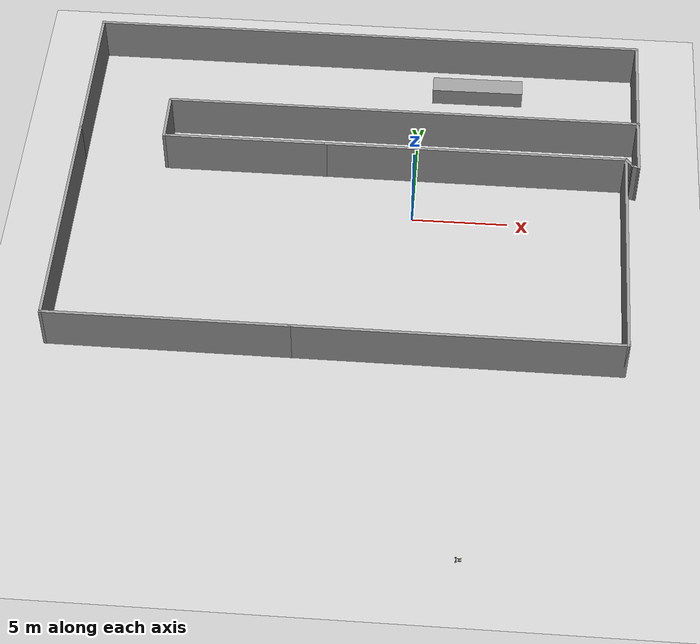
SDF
<sdf version="1.7">
 <world name="default">
  <light name="sun" type="directional">
   <pose>0 0 10 0 -0 0</pose>
   <diffuse>0.8 0.8 0.8 1</diffuse>
   <specular>0.2 0.2 0.2 1</specular>
   <attenuation>
    <range>1000</range>
    <constant>0.9</constant>
    <linear>0.01</linear>
    <quadratic>0.001</quadratic>
   </attenuation>
   <direction>-0.5 0.1 -0.9</direction>
   <spot><inner_angle>0</inner_angle><outer_angle>0</outer_angle><falloff>0</falloff></spot>
  </light>
  <model name="ground_plane">
   <static>1</static>
   <link name="link">
    <collision name="collision">
     <geometry><plane><normal>0 0 1</normal><size>100 100</size></plane></geometry>
     <surface>
      <contact><collide_bitmask>65535</collide_bitmask></contact>
      <friction><ode><mu>100</mu><mu2>50</mu2></ode></friction>
     </surface>
    </collision>
    <visual name="visual">
     <cast_shadows>0</cast_shadows>
     <geometry><plane><normal>0 0 1</normal><size>100 100</size></plane></geometry>
     <material>
      <script><uri>file://media/materials/scripts/gazebo.material</uri><name>Gazebo/Grey</name></script>
     </material>
    </visual>
   </link>
  </model>
  <gravity>0 0 -9.8</gravity>
  <magnetic_field>6e-06 2.3e-05 -4.2e-05</magnetic_field>
  <atmosphere type="adiabatic"/>
  <physics type="ode">
   <max_step_size>0.001</max_step_size>
   <real_time_factor>1</real_time_factor>
   <real_time_update_rate>1000</real_time_update_rate>
  </physics>
  <scene><ambient>0.4 0.4 0.4 1</ambient><background>0.7 0.7 0.7 1</background><shadows>1</shadows></scene>
  <spherical_coordinates>
   <surface_model>EARTH_WGS84</surface_model>
   <latitude_deg>0</latitude_deg>
   <longitude_deg>0</longitude_deg>
   <elevation>0</elevation>
   <heading_deg>0</heading_deg>
  </spherical_coordinates>
  <model name="self_balancing_robot">
   <link name="link_chassis">
    <inertial>
     <pose>0 0 0.089 0 -0 0</pose>
     <mass>2.50001</mass>
     <inertia>
      <ixx>0.0305466</ixx>
      <ixy>0</ixy>
      <ixz>3.85977e-20</ixz>
      <iyy>0.0283746</iyy>
      <iyz>2.73468e-15</iyz>
      <izz>0.0108558</izz>
     </inertia>
    </inertial>
    <collision name="link_chassis_fixed_joint_lump__collision_chassis_collision">
     <geometry><box><size>0.085 0.18 0.004</size></box></geometry>
    </collision>
    <collision name="link_chassis_2_collision_1">
     <pose>0 0 0.225 0 -0 0</pose>
     <geometry><box><size>0.085 0.18 0.004</size></box></geometry>
    </collision>
    <collision name="link_chassis_3_collision_2">
     <pose>0 0 0.115 0 -0 0</pose>
     <geometry><box><size>0.085 0.18 0.004</size></box></geometry>
    </collision>
    <collision name="link_chassis_fixed_joint_lump__cubuk_1_collision_3">
     <pose>0.02 0.06 0.125 0 -0 0</pose>
     <geometry><cylinder><length>0.25</length><radius>0.008</radius></cylinder></geometry>
    </collision>
    <collision name="link_chassis_fixed_joint_lump__cubuk_2_collision_4">
     <pose>-0.02 0.06 0.125 0 -0 0</pose>
     <geometry><cylinder><length>0.25</length><radius>0.008</radius></cylinder></geometry>
    </collision>
    <collision name="link_chassis_fixed_joint_lump__cubuk_3_collision_5">
     <pose>0.02 -0.06 0.125 0 -0 0</pose>
     <geometry><cylinder><length>0.25</length><radius>0.008</radius></cylinder></geometry>
    </collision>
    <collision name="link_chassis_fixed_joint_lump__cubuk_4_collision_6">
     <pose>-0.02 -0.06 0.125 0 -0 0</pose>
     <geometry><cylinder><length>0.25</length><radius>0.008</radius></cylinder></geometry>
    </collision>
    <collision name="link_chassis_fixed_joint_lump__tekerlek_motor_sag_collision_7">
     <pose>0 0.09 -0.02 0 -0 0</pose>
     <geometry><box><size>0.08 0.04 0.05</size></box></geometry>
    </collision>
    <collision name="link_chassis_fixed_joint_lump__teker_cubuk_sag_collision_8">
     <pose>0 0.12 -0.02 1.5708 -0 0</pose>
     <geometry><cylinder><length>0.02</length><radius>0.005</radius></cylinder></geometry>
    </collision>
    <collision name="link_chassis_fixed_joint_lump__tekerlek_motor_sol_collision_9">
     <pose>0 -0.09 -0.02 0 -0 0</pose>
     <geometry><box><size>0.08 0.04 0.05</size></box></geometry>
    </collision>
    <collision name="link_chassis_fixed_joint_lump__teker_cubuk_sol_collision_10">
     <pose>0 -0.12 -0.02 1.5708 -0 0</pose>
     <geometry><cylinder><length>0.02</length><radius>0.005</radius></cylinder></geometry>
    </collision>
    <collision name="link_chassis_fixed_joint_lump__sensor_laser_collision_11">
     <pose>0 0 0.125 0 -0 0</pose>
     <geometry><cylinder><length>0.02</length><radius>0.025</radius></cylinder></geometry>
    </collision>
    <visual name="link_chassis_visual">
     <geometry><box><size>0.085 0.18 0.004</size></box></geometry>
     <material>
      <script><name>Gazebo/Yellow</name><uri>file://media/materials/scripts/gazebo.material</uri></script>
     </material>
    </visual>
    <visual name="link_chassis_2_visual_1">
     <pose>0 0 0.225 0 -0 0</pose>
     <geometry><box><size>0.085 0.18 0.004</size></box></geometry>
     <material>
      <script><name>Gazebo/Yellow</name><uri>file://media/materials/scripts/gazebo.material</uri></script>
     </material>
    </visual>
    <visual name="link_chassis_3_visual_2">
     <pose>0 0 0.115 0 -0 0</pose>
     <geometry><box><size>0.085 0.18 0.004</size></box></geometry>
     <material>
      <script><name>Gazebo/Yellow</name><uri>file://media/materials/scripts/gazebo.material</uri></script>
     </material>
    </visual>
    <visual name="link_chassis_fixed_joint_lump__cubuk_1_visual_3">
     <pose>0.02 0.06 0.125 0 -0 0</pose>
     <geometry><cylinder><length>0.25</length><radius>0.008</radius></cylinder></geometry>
     <material>
      <script><name>Gazebo/Gray</name><uri>file://media/materials/scripts/gazebo.material</uri></script>
     </material>
    </visual>
    <visual name="link_chassis_fixed_joint_lump__cubuk_2_visual_4">
     <pose>-0.02 0.06 0.125 0 -0 0</pose>
     <geometry><cylinder><length>0.25</length><radius>0.008</radius></cylinder></geometry>
     <material>
      <script><name>Gazebo/Gray</name><uri>file://media/materials/scripts/gazebo.material</uri></script>
     </material>
    </visual>
    <visual name="link_chassis_fixed_joint_lump__cubuk_3_visual_5">
     <pose>0.02 -0.06 0.125 0 -0 0</pose>
     <geometry><cylinder><length>0.25</length><radius>0.008</radius></cylinder></geometry>
     <material>
      <script><name>Gazebo/Gray</name><uri>file://media/materials/scripts/gazebo.material</uri></script>
     </material>
    </visual>
    <visual name="link_chassis_fixed_joint_lump__cubuk_4_visual_6">
     <pose>-0.02 -0.06 0.125 0 -0 0</pose>
     <geometry><cylinder><length>0.25</length><radius>0.008</radius></cylinder></geometry>
     <material>
      <script><name>Gazebo/Gray</name><uri>file://media/materials/scripts/gazebo.material</uri></script>
     </material>
    </visual>
    <visual name="link_chassis_fixed_joint_lump__tekerlek_motor_sag_visual_7">
     <pose>0 0.09 -0.02 0 -0 0</pose>
     <geometry><box><size>0.08 0.04 0.05</size></box></geometry>
     <material>
      <script><name>Gazebo/Black</name><uri>file://media/materials/scripts/gazebo.material</uri></script>
     </material>
    </visual>
    <visual name="link_chassis_fixed_joint_lump__teker_cubuk_sag_visual_8">
     <pose>0 0.12 -0.02 1.5708 -0 0</pose>
     <geometry><cylinder><length>0.02</length><radius>0.005</radius></cylinder></geometry>
     <material>
      <script><name>Gazebo/Gray</name><uri>file://media/materials/scripts/gazebo.material</uri></script>
     </material>
    </visual>
    <visual name="link_chassis_fixed_joint_lump__tekerlek_motor_sol_visual_9">
     <pose>0 -0.09 -0.02 0 -0 0</pose>
     <geometry><box><size>0.08 0.04 0.05</size></box></geometry>
     <material>
      <script><name>Gazebo/Black</name><uri>file://media/materials/scripts/gazebo.material</uri></script>
     </material>
    </visual>
    <visual name="link_chassis_fixed_joint_lump__teker_cubuk_sol_visual_10">
     <pose>0 -0.12 -0.02 1.5708 -0 0</pose>
     <geometry><cylinder><length>0.02</length><radius>0.005</radius></cylinder></geometry>
     <material>
      <script><name>Gazebo/Gray</name><uri>file://media/materials/scripts/gazebo.material</uri></script>
     </material>
    </visual>
    <visual name="link_chassis_fixed_joint_lump__sensor_laser_visual_11">
     <pose>0 0 0.125 0 -0 0</pose>
     <geometry><cylinder><length>0.01</length><radius>0.025</radius></cylinder></geometry>
     <material>
      <script><name>Gazebo/Black</name><uri>file://media/materials/scripts/gazebo.material</uri></script>
     </material>
    </visual>
    <sensor name="head_hokuyo_sensor" type="ray">
     <visualize>0</visualize>
     <update_rate>40</update_rate>
     <ray>
      <scan>
       <horizontal>
        <samples>720</samples>
        <resolution>1</resolution>
        <min_angle>-1.5708</min_angle>
        <max_angle>1.5708</max_angle>
       </horizontal>
       <vertical><samples>1</samples><min_angle>0</min_angle><max_angle>0</max_angle></vertical>
      </scan>
      <range><min>0.1</min><max>10</max><resolution>0.01</resolution></range>
      <noise><type>gaussian</type><mean>0</mean><stddev>0.01</stddev></noise>
     </ray>
     <plugin name="gazebo_ros_head_hokuyo_controller" filename="libgazebo_ros_laser.so">
      <topicName>/lidar/laser/scan</topicName>
      <frameName>sensor_laser</frameName>
      <robotNamespace>/</robotNamespace>
     </plugin>
     <pose>0 0 0.125 0 -0 0</pose>
    </sensor>
   </link>
   <joint name="joint_right_wheel" type="revolute">
    <pose relative_to="link_chassis">0 0.12 -0.02 0 -0 0</pose>
    <parent>link_chassis</parent>
    <child>link_right_wheel</child>
    <axis>
     <xyz>0 1 0</xyz>
     <limit><lower>-1e+16</lower><upper>1e+16</upper></limit>
     <dynamics><spring_reference>0</spring_reference><spring_stiffness>0</spring_stiffness></dynamics>
    </axis>
   </joint>
   <link name="link_right_wheel">
    <pose relative_to="joint_right_wheel">0 0 0 0 -0 0</pose>
    <inertial>
     <pose>0 0 0 -0 1.5707 1.5707</pose>
     <mass>1</mass>
     <inertia><ixx>0.0006</ixx><ixy>0</ixy><ixz>0</ixz><iyy>0.0006</iyy><iyz>0</iyz><izz>0.00125</izz></inertia>
    </inertial>
    <collision name="link_right_wheel_collision_collision">
     <pose>0 0 0 1.57089 1.57079 -3.14159</pose>
     <geometry><cylinder><length>0.008</length><radius>0.05</radius></cylinder></geometry>
    </collision>
    <visual name="link_right_wheel_visual_visual">
     <pose>0 0 0 1.57089 1.57079 -3.14159</pose>
     <geometry><cylinder><length>0.008</length><radius>0.05</radius></cylinder></geometry>
     <material>
      <script><name>Gazebo/White</name><uri>file://media/materials/scripts/gazebo.material</uri></script>
     </material>
    </visual>
   </link>
   <joint name="joint_left_wheel" type="revolute">
    <pose relative_to="link_chassis">0 -0.12 -0.02 0 -0 0</pose>
    <parent>link_chassis</parent>
    <child>link_left_wheel</child>
    <axis>
     <xyz>0 1 0</xyz>
     <limit><lower>-1e+16</lower><upper>1e+16</upper></limit>
     <dynamics><spring_reference>0</spring_reference><spring_stiffness>0</spring_stiffness></dynamics>
    </axis>
   </joint>
   <link name="link_left_wheel">
    <pose relative_to="joint_left_wheel">0 0 0 0 -0 0</pose>
    <inertial>
     <pose>0 0 0 -0 1.5707 1.5707</pose>
     <mass>1</mass>
     <inertia><ixx>0.0006</ixx><ixy>0</ixy><ixz>0</ixz><iyy>0.0006</iyy><iyz>0</iyz><izz>0.00125</izz></inertia>
    </inertial>
    <collision name="link_left_wheel_collision_collision">
     <pose>0 0 0 1.57089 1.57079 -3.14159</pose>
     <geometry><cylinder><length>0.008</length><radius>0.05</radius></cylinder></geometry>
    </collision>
    <visual name="link_left_wheel_visual_visual">
     <pose>0 0 0 1.57089 1.57079 -3.14159</pose>
     <geometry><cylinder><length>0.008</length><radius>0.05</radius></cylinder></geometry>
     <material>
      <script><name>Gazebo/White</name><uri>file://media/materials/scripts/gazebo.material</uri></script>
     </material>
    </visual>
   </link>
   <static>0</static>
   <plugin name="differential_drive_controller" filename="libgazebo_ros_diff_drive.so">
    <legacyMode>0</legacyMode>
    <alwaysOn>1</alwaysOn>
    <updateRate>20</updateRate>
    <leftJoint>joint_left_wheel</leftJoint>
    <rightJoint>joint_right_wheel</rightJoint>
    <wheelSeparation>0.2</wheelSeparation>
    <wheelDiameter>0.2</wheelDiameter>
    <torque>20</torque>
    <commandTopic>cmd_vel</commandTopic>
    <odometryTopic>odom</odometryTopic>
    <odometryFrame>odom</odometryFrame>
    <robotBaseFrame>link_chassis</robotBaseFrame>
    <robotNamespace>/</robotNamespace>
   </plugin>
   <pose>3.19275 -20.7435 0.049391 -3.14157 -1.54035 -0.000222</pose>
  </model>
  <model name="masa">
   <link name="link_3">
    <inertial>
     <mass>4.90617</mass>
     <inertia><ixx>10.2501</ixx><ixy>0</ixy><ixz>0</ixz><iyy>0.817696</iyy><iyz>0</iyz><izz>10.2501</izz></inertia>
    </inertial>
    <pose>-4e-06 -4e-06 0 0 -0 1.57967</pose>
    <visual name="visual">
     <geometry><box><size>1 4.90618 1</size></box></geometry>
     <material>
      <lighting>1</lighting>
      <script><uri>file://media/materials/scripts/gazebo.material</uri><name>Gazebo/Grey</name></script>
      <shader type="pixel"/>
     </material>
    </visual>
    <collision name="collision">
     <geometry><box><size>1 4.90618 1</size></box></geometry>
     <surface>
      <friction>
       <ode><mu>1</mu><mu2>1</mu2><fdir1>0 0 0</fdir1><slip1>0</slip1><slip2>0</slip2></ode>
       <torsional>
        <coefficient>1</coefficient>
        <patch_radius>0</patch_radius>
        <surface_radius>0</surface_radius>
        <use_patch_radius>1</use_patch_radius>
        <ode><slip>0</slip></ode>
       </torsional>
      </friction>
      <bounce><restitution_coefficient>0</restitution_coefficient><threshold>1e+06</threshold></bounce>
      <contact>
       <collide_without_contact>0</collide_without_contact>
       <collide_without_contact_bitmask>1</collide_without_contact_bitmask>
       <collide_bitmask>1</collide_bitmask>
       <ode>
        <soft_cfm>0</soft_cfm>
        <soft_erp>0.2</soft_erp>
        <kp>1e+13</kp>
        <kd>1</kd>
        <max_vel>0.01</max_vel>
        <min_depth>0</min_depth>
       </ode>
       <bullet>
        <split_impulse>1</split_impulse>
        <split_impulse_penetration_threshold>-0.01</split_impulse_penetration_threshold>
        <soft_cfm>0</soft_cfm>
        <soft_erp>0.2</soft_erp>
        <kp>1e+13</kp>
        <kd>1</kd>
       </bullet>
      </contact>
     </surface>
    </collision>
   </link>
   <static>0</static>
   <pose>3.07788 9.22564 0.5 0 -0 0</pose>
  </model>
  <model name="cafe_duvar">
   <link name="Wall_45">
    <pose>5.84157 -10.35 0 0 -0 0</pose>
    <visual name="Wall_45_Visual">
     <pose>0 0 1.25 0 -0 0</pose>
     <geometry><box><size>16.75 0.15 2.5</size></box></geometry>
     <material>
      <script><uri>file://media/materials/scripts/gazebo.material</uri><name>Gazebo/Grey</name></script>
      <ambient>1 1 1 1</ambient>
      <shader type="pixel"/>
     </material>
     <meta><layer>0</layer></meta>
    </visual>
    <collision name="Wall_45_Collision">
     <pose>0 0 1.25 0 -0 0</pose>
     <geometry><box><size>16.75 0.15 2.5</size></box></geometry>
     <surface>
      <friction>
       <ode><mu>1</mu><mu2>1</mu2><fdir1>0 0 0</fdir1><slip1>0</slip1><slip2>0</slip2></ode>
       <torsional>
        <coefficient>1</coefficient>
        <patch_radius>0</patch_radius>
        <surface_radius>0</surface_radius>
        <use_patch_radius>1</use_patch_radius>
        <ode><slip>0</slip></ode>
       </torsional>
      </friction>
      <bounce><restitution_coefficient>0</restitution_coefficient><threshold>1e+06</threshold></bounce>
      <contact>
       <collide_without_contact>0</collide_without_contact>
       <collide_without_contact_bitmask>1</collide_without_contact_bitmask>
       <collide_bitmask>1</collide_bitmask>
       <ode>
        <soft_cfm>0</soft_cfm>
        <soft_erp>0.2</soft_erp>
        <kp>1e+13</kp>
        <kd>1</kd>
        <max_vel>0.01</max_vel>
        <min_depth>0</min_depth>
       </ode>
       <bullet>
        <split_impulse>1</split_impulse>
        <split_impulse_penetration_threshold>-0.01</split_impulse_penetration_threshold>
        <soft_cfm>0</soft_cfm>
        <soft_erp>0.2</soft_erp>
        <kp>1e+13</kp>
        <kd>1</kd>
       </bullet>
      </contact>
     </surface>
    </collision>
   </link>
   <link name="Wall_46">
    <pose>14.1416 -4.175 0 0 -0 1.5708</pose>
    <visual name="Wall_46_Visual">
     <pose>0 0 1.25 0 -0 0</pose>
     <geometry><box><size>12.5 0.15 2.5</size></box></geometry>
     <material>
      <script><uri>file://media/materials/scripts/gazebo.material</uri><name>Gazebo/Grey</name></script>
      <ambient>1 1 1 1</ambient>
      <shader type="pixel"/>
     </material>
     <meta><layer>0</layer></meta>
    </visual>
    <collision name="Wall_46_Collision">
     <pose>0 0 1.25 0 -0 0</pose>
     <geometry><box><size>12.5 0.15 2.5</size></box></geometry>
     <surface>
      <friction>
       <ode><mu>1</mu><mu2>1</mu2><fdir1>0 0 0</fdir1><slip1>0</slip1><slip2>0</slip2></ode>
       <torsional>
        <coefficient>1</coefficient>
        <patch_radius>0</patch_radius>
        <surface_radius>0</surface_radius>
        <use_patch_radius>1</use_patch_radius>
        <ode><slip>0</slip></ode>
       </torsional>
      </friction>
      <bounce><restitution_coefficient>0</restitution_coefficient><threshold>1e+06</threshold></bounce>
      <contact>
       <collide_without_contact>0</collide_without_contact>
       <collide_without_contact_bitmask>1</collide_without_contact_bitmask>
       <collide_bitmask>1</collide_bitmask>
       <ode>
        <soft_cfm>0</soft_cfm>
        <soft_erp>0.2</soft_erp>
        <kp>1e+13</kp>
        <kd>1</kd>
        <max_vel>0.01</max_vel>
        <min_depth>0</min_depth>
       </ode>
       <bullet>
        <split_impulse>1</split_impulse>
        <split_impulse_penetration_threshold>-0.01</split_impulse_penetration_threshold>
        <soft_cfm>0</soft_cfm>
        <soft_erp>0.2</soft_erp>
        <kp>1e+13</kp>
        <kd>1</kd>
       </bullet>
      </contact>
     </surface>
    </collision>
   </link>
   <link name="Wall_47">
    <pose>6.21657 2 0 0 -0 3.14159</pose>
    <visual name="Wall_47_Visual">
     <pose>0 0 1.25 0 -0 0</pose>
     <geometry><box><size>16 0.15 2.5</size></box></geometry>
     <material>
      <script><uri>file://media/materials/scripts/gazebo.material</uri><name>Gazebo/Grey</name></script>
      <ambient>1 1 1 1</ambient>
      <shader type="pixel"/>
     </material>
     <meta><layer>0</layer></meta>
    </visual>
    <collision name="Wall_47_Collision">
     <pose>0 0 1.25 0 -0 0</pose>
     <geometry><box><size>16 0.15 2.5</size></box></geometry>
     <surface>
      <friction>
       <ode><mu>1</mu><mu2>1</mu2><fdir1>0 0 0</fdir1><slip1>0</slip1><slip2>0</slip2></ode>
       <torsional>
        <coefficient>1</coefficient>
        <patch_radius>0</patch_radius>
        <surface_radius>0</surface_radius>
        <use_patch_radius>1</use_patch_radius>
        <ode><slip>0</slip></ode>
       </torsional>
      </friction>
      <bounce><restitution_coefficient>0</restitution_coefficient><threshold>1e+06</threshold></bounce>
      <contact>
       <collide_without_contact>0</collide_without_contact>
       <collide_without_contact_bitmask>1</collide_without_contact_bitmask>
       <collide_bitmask>1</collide_bitmask>
       <ode>
        <soft_cfm>0</soft_cfm>
        <soft_erp>0.2</soft_erp>
        <kp>1e+13</kp>
        <kd>1</kd>
        <max_vel>0.01</max_vel>
        <min_depth>0</min_depth>
       </ode>
       <bullet>
        <split_impulse>1</split_impulse>
        <split_impulse_penetration_threshold>-0.01</split_impulse_penetration_threshold>
        <soft_cfm>0</soft_cfm>
        <soft_erp>0.2</soft_erp>
        <kp>1e+13</kp>
        <kd>1</kd>
       </bullet>
      </contact>
     </surface>
    </collision>
   </link>
   <link name="Wall_49">
    <pose>-8.63343 -10.35 0 0 -0 3.14159</pose>
    <visual name="Wall_49_Visual">
     <pose>0 0 1.25 0 -0 0</pose>
     <geometry><box><size>12.5 0.15 2.5</size></box></geometry>
     <material>
      <script><uri>file://media/materials/scripts/gazebo.material</uri><name>Gazebo/Grey</name></script>
      <ambient>1 1 1 1</ambient>
      <shader type="pixel"/>
     </material>
     <meta><layer>0</layer></meta>
    </visual>
    <collision name="Wall_49_Collision">
     <pose>0 0 1.25 0 -0 0</pose>
     <geometry><box><size>12.5 0.15 2.5</size></box></geometry>
     <surface>
      <friction>
       <ode><mu>1</mu><mu2>1</mu2><fdir1>0 0 0</fdir1><slip1>0</slip1><slip2>0</slip2></ode>
       <torsional>
        <coefficient>1</coefficient>
        <patch_radius>0</patch_radius>
        <surface_radius>0</surface_radius>
        <use_patch_radius>1</use_patch_radius>
        <ode><slip>0</slip></ode>
       </torsional>
      </friction>
      <bounce><restitution_coefficient>0</restitution_coefficient><threshold>1e+06</threshold></bounce>
      <contact>
       <collide_without_contact>0</collide_without_contact>
       <collide_without_contact_bitmask>1</collide_without_contact_bitmask>
       <collide_bitmask>1</collide_bitmask>
       <ode>
        <soft_cfm>0</soft_cfm>
        <soft_erp>0.2</soft_erp>
        <kp>1e+13</kp>
        <kd>1</kd>
        <max_vel>0.01</max_vel>
        <min_depth>0</min_depth>
       </ode>
       <bullet>
        <split_impulse>1</split_impulse>
        <split_impulse_penetration_threshold>-0.01</split_impulse_penetration_threshold>
        <soft_cfm>0</soft_cfm>
        <soft_erp>0.2</soft_erp>
        <kp>1e+13</kp>
        <kd>1</kd>
       </bullet>
      </contact>
     </surface>
    </collision>
   </link>
   <link name="Wall_50">
    <pose>-14.8084 -4.05 0 0 -0 1.5708</pose>
    <visual name="Wall_50_Visual">
     <pose>0 0 1.25 0 -0 0</pose>
     <geometry><box><size>12.75 0.15 2.5</size></box></geometry>
     <material>
      <script><uri>file://media/materials/scripts/gazebo.material</uri><name>Gazebo/Grey</name></script>
      <ambient>1 1 1 1</ambient>
      <shader type="pixel"/>
     </material>
     <meta><layer>0</layer></meta>
    </visual>
    <collision name="Wall_50_Collision">
     <pose>0 0 1.25 0 -0 0</pose>
     <geometry><box><size>12.75 0.15 2.5</size></box></geometry>
     <surface>
      <friction>
       <ode><mu>1</mu><mu2>1</mu2><fdir1>0 0 0</fdir1><slip1>0</slip1><slip2>0</slip2></ode>
       <torsional>
        <coefficient>1</coefficient>
        <patch_radius>0</patch_radius>
        <surface_radius>0</surface_radius>
        <use_patch_radius>1</use_patch_radius>
        <ode><slip>0</slip></ode>
       </torsional>
      </friction>
      <bounce><restitution_coefficient>0</restitution_coefficient><threshold>1e+06</threshold></bounce>
      <contact>
       <collide_without_contact>0</collide_without_contact>
       <collide_without_contact_bitmask>1</collide_without_contact_bitmask>
       <collide_bitmask>1</collide_bitmask>
       <ode>
        <soft_cfm>0</soft_cfm>
        <soft_erp>0.2</soft_erp>
        <kp>1e+13</kp>
        <kd>1</kd>
        <max_vel>0.01</max_vel>
        <min_depth>0</min_depth>
       </ode>
       <bullet>
        <split_impulse>1</split_impulse>
        <split_impulse_penetration_threshold>-0.01</split_impulse_penetration_threshold>
        <soft_cfm>0</soft_cfm>
        <soft_erp>0.2</soft_erp>
        <kp>1e+13</kp>
        <kd>1</kd>
       </bullet>
      </contact>
     </surface>
    </collision>
   </link>
   <link name="Wall_52">
    <pose>-6.00843 2 0 0 -0 3.14159</pose>
    <visual name="Wall_52_Visual">
     <pose>0 0 1.25 0 -0 0</pose>
     <geometry><box><size>8.75 0.15 2.5</size></box></geometry>
     <material>
      <script><uri>file://media/materials/scripts/gazebo.material</uri><name>Gazebo/Grey</name></script>
      <ambient>1 1 1 1</ambient>
      <shader type="pixel"/>
     </material>
     <meta><layer>0</layer></meta>
    </visual>
    <collision name="Wall_52_Collision">
     <pose>0 0 1.25 0 -0 0</pose>
     <geometry><box><size>8.75 0.15 2.5</size></box></geometry>
     <surface>
      <friction>
       <ode><mu>1</mu><mu2>1</mu2><fdir1>0 0 0</fdir1><slip1>0</slip1><slip2>0</slip2></ode>
       <torsional>
        <coefficient>1</coefficient>
        <patch_radius>0</patch_radius>
        <surface_radius>0</surface_radius>
        <use_patch_radius>1</use_patch_radius>
        <ode><slip>0</slip></ode>
       </torsional>
      </friction>
      <bounce><restitution_coefficient>0</restitution_coefficient><threshold>1e+06</threshold></bounce>
      <contact>
       <collide_without_contact>0</collide_without_contact>
       <collide_without_contact_bitmask>1</collide_without_contact_bitmask>
       <collide_bitmask>1</collide_bitmask>
       <ode>
        <soft_cfm>0</soft_cfm>
        <soft_erp>0.2</soft_erp>
        <kp>1e+13</kp>
        <kd>1</kd>
        <max_vel>0.01</max_vel>
        <min_depth>0</min_depth>
       </ode>
       <bullet>
        <split_impulse>1</split_impulse>
        <split_impulse_penetration_threshold>-0.01</split_impulse_penetration_threshold>
        <soft_cfm>0</soft_cfm>
        <soft_erp>0.2</soft_erp>
        <kp>1e+13</kp>
        <kd>1</kd>
       </bullet>
      </contact>
     </surface>
    </collision>
   </link>
   <link name="Wall_53">
    <pose>-10.3084 3.3 0 0 -0 1.5708</pose>
    <visual name="Wall_53_Visual">
     <pose>0 0 1.25 0 -0 0</pose>
     <geometry><box><size>2.75 0.15 2.5</size></box></geometry>
     <material>
      <script><uri>file://media/materials/scripts/gazebo.material</uri><name>Gazebo/Grey</name></script>
      <ambient>1 1 1 1</ambient>
      <shader type="pixel"/>
     </material>
     <meta><layer>0</layer></meta>
    </visual>
    <collision name="Wall_53_Collision">
     <pose>0 0 1.25 0 -0 0</pose>
     <geometry><box><size>2.75 0.15 2.5</size></box></geometry>
     <surface>
      <friction>
       <ode><mu>1</mu><mu2>1</mu2><fdir1>0 0 0</fdir1><slip1>0</slip1><slip2>0</slip2></ode>
       <torsional>
        <coefficient>1</coefficient>
        <patch_radius>0</patch_radius>
        <surface_radius>0</surface_radius>
        <use_patch_radius>1</use_patch_radius>
        <ode><slip>0</slip></ode>
       </torsional>
      </friction>
      <bounce><restitution_coefficient>0</restitution_coefficient><threshold>1e+06</threshold></bounce>
      <contact>
       <collide_without_contact>0</collide_without_contact>
       <collide_without_contact_bitmask>1</collide_without_contact_bitmask>
       <collide_bitmask>1</collide_bitmask>
       <ode>
        <soft_cfm>0</soft_cfm>
        <soft_erp>0.2</soft_erp>
        <kp>1e+13</kp>
        <kd>1</kd>
        <max_vel>0.01</max_vel>
        <min_depth>0</min_depth>
       </ode>
       <bullet>
        <split_impulse>1</split_impulse>
        <split_impulse_penetration_threshold>-0.01</split_impulse_penetration_threshold>
        <soft_cfm>0</soft_cfm>
        <soft_erp>0.2</soft_erp>
        <kp>1e+13</kp>
        <kd>1</kd>
       </bullet>
      </contact>
     </surface>
    </collision>
   </link>
   <link name="Wall_54">
    <pose>2.27991 4.64963 0 0 -0 0</pose>
    <inertial>
     <inertia><ixx>0</ixx><ixy>0</ixy><ixz>0</ixz><iyy>0</iyy><iyz>0</iyz><izz>0</izz></inertia>
     <mass>0</mass>
    </inertial>
    <visual name="Wall_54_Visual">
     <pose>0 0 1.25 0 -0 0</pose>
     <geometry><box><size>25.2108 0.15 2.5</size></box></geometry>
     <material>
      <script><uri>file://media/materials/scripts/gazebo.material</uri><name>Gazebo/Grey</name></script>
      <ambient>1 1 1 1</ambient>
      <shader type="pixel"/>
     </material>
     <meta><layer>0</layer></meta>
    </visual>
    <collision name="Wall_54_Collision">
     <pose>0 0 1.25 0 -0 0</pose>
     <geometry><box><size>25.2108 0.15 2.5</size></box></geometry>
     <surface>
      <friction>
       <ode><mu>1</mu><mu2>1</mu2><fdir1>0 0 0</fdir1><slip1>0</slip1><slip2>0</slip2></ode>
       <torsional>
        <coefficient>1</coefficient>
        <patch_radius>0</patch_radius>
        <surface_radius>0</surface_radius>
        <use_patch_radius>1</use_patch_radius>
        <ode><slip>0</slip></ode>
       </torsional>
      </friction>
      <bounce><restitution_coefficient>0</restitution_coefficient><threshold>1e+06</threshold></bounce>
      <contact>
       <collide_without_contact>0</collide_without_contact>
       <collide_without_contact_bitmask>1</collide_without_contact_bitmask>
       <collide_bitmask>1</collide_bitmask>
       <ode>
        <soft_cfm>0</soft_cfm>
        <soft_erp>0.2</soft_erp>
        <kp>1e+13</kp>
        <kd>1</kd>
        <max_vel>0.01</max_vel>
        <min_depth>0</min_depth>
       </ode>
       <bullet>
        <split_impulse>1</split_impulse>
        <split_impulse_penetration_threshold>-0.01</split_impulse_penetration_threshold>
        <soft_cfm>0</soft_cfm>
        <soft_erp>0.2</soft_erp>
        <kp>1e+13</kp>
        <kd>1</kd>
       </bullet>
      </contact>
     </surface>
    </collision>
   </link>
   <link name="Wall_56">
    <pose>-14.8084 6.3 0 0 -0 1.5708</pose>
    <visual name="Wall_56_Visual">
     <pose>0 0 1.25 0 -0 0</pose>
     <geometry><box><size>8.25 0.15 2.5</size></box></geometry>
     <material>
      <script><uri>file://media/materials/scripts/gazebo.material</uri><name>Gazebo/Grey</name></script>
      <ambient>1 1 1 1</ambient>
      <shader type="pixel"/>
     </material>
     <meta><layer>0</layer></meta>
    </visual>
    <collision name="Wall_56_Collision">
     <pose>0 0 1.25 0 -0 0</pose>
     <geometry><box><size>8.25 0.15 2.5</size></box></geometry>
     <surface>
      <friction>
       <ode><mu>1</mu><mu2>1</mu2><fdir1>0 0 0</fdir1><slip1>0</slip1><slip2>0</slip2></ode>
       <torsional>
        <coefficient>1</coefficient>
        <patch_radius>0</patch_radius>
        <surface_radius>0</surface_radius>
        <use_patch_radius>1</use_patch_radius>
        <ode><slip>0</slip></ode>
       </torsional>
      </friction>
      <bounce><restitution_coefficient>0</restitution_coefficient><threshold>1e+06</threshold></bounce>
      <contact>
       <collide_without_contact>0</collide_without_contact>
       <collide_without_contact_bitmask>1</collide_without_contact_bitmask>
       <collide_bitmask>1</collide_bitmask>
       <ode>
        <soft_cfm>0</soft_cfm>
        <soft_erp>0.2</soft_erp>
        <kp>1e+13</kp>
        <kd>1</kd>
        <max_vel>0.01</max_vel>
        <min_depth>0</min_depth>
       </ode>
       <bullet>
        <split_impulse>1</split_impulse>
        <split_impulse_penetration_threshold>-0.01</split_impulse_penetration_threshold>
        <soft_cfm>0</soft_cfm>
        <soft_erp>0.2</soft_erp>
        <kp>1e+13</kp>
        <kd>1</kd>
       </bullet>
      </contact>
     </surface>
    </collision>
   </link>
   <link name="Wall_57">
    <pose>-0.008428 10.35 0 0 -0 0</pose>
    <visual name="Wall_57_Visual">
     <pose>0 0 1.25 0 -0 0</pose>
     <geometry><box><size>29.75 0.15 2.5</size></box></geometry>
     <material>
      <script><uri>file://media/materials/scripts/gazebo.material</uri><name>Gazebo/Grey</name></script>
      <ambient>1 1 1 1</ambient>
      <shader type="pixel"/>
     </material>
     <meta><layer>0</layer></meta>
    </visual>
    <collision name="Wall_57_Collision">
     <pose>0 0 1.25 0 -0 0</pose>
     <geometry><box><size>29.75 0.15 2.5</size></box></geometry>
     <surface>
      <friction>
       <ode><mu>1</mu><mu2>1</mu2><fdir1>0 0 0</fdir1><slip1>0</slip1><slip2>0</slip2></ode>
       <torsional>
        <coefficient>1</coefficient>
        <patch_radius>0</patch_radius>
        <surface_radius>0</surface_radius>
        <use_patch_radius>1</use_patch_radius>
        <ode><slip>0</slip></ode>
       </torsional>
      </friction>
      <bounce><restitution_coefficient>0</restitution_coefficient><threshold>1e+06</threshold></bounce>
      <contact>
       <collide_without_contact>0</collide_without_contact>
       <collide_without_contact_bitmask>1</collide_without_contact_bitmask>
       <collide_bitmask>1</collide_bitmask>
       <ode>
        <soft_cfm>0</soft_cfm>
        <soft_erp>0.2</soft_erp>
        <kp>1e+13</kp>
        <kd>1</kd>
        <max_vel>0.01</max_vel>
        <min_depth>0</min_depth>
       </ode>
       <bullet>
        <split_impulse>1</split_impulse>
        <split_impulse_penetration_threshold>-0.01</split_impulse_penetration_threshold>
        <soft_cfm>0</soft_cfm>
        <soft_erp>0.2</soft_erp>
        <kp>1e+13</kp>
        <kd>1</kd>
       </bullet>
      </contact>
     </surface>
    </collision>
   </link>
   <link name="Wall_58">
    <pose>14.7916 5.925 0 0 0 -1.5708</pose>
    <visual name="Wall_58_Visual">
     <pose>0 0 1.25 0 -0 0</pose>
     <geometry><box><size>9 0.15 2.5</size></box></geometry>
     <material>
      <script><uri>file://media/materials/scripts/gazebo.material</uri><name>Gazebo/Grey</name></script>
      <ambient>1 1 1 1</ambient>
      <shader type="pixel"/>
     </material>
     <meta><layer>0</layer></meta>
    </visual>
    <collision name="Wall_58_Collision">
     <pose>0 0 1.25 0 -0 0</pose>
     <geometry><box><size>9 0.15 2.5</size></box></geometry>
     <surface>
      <friction>
       <ode><mu>1</mu><mu2>1</mu2><fdir1>0 0 0</fdir1><slip1>0</slip1><slip2>0</slip2></ode>
       <torsional>
        <coefficient>1</coefficient>
        <patch_radius>0</patch_radius>
        <surface_radius>0</surface_radius>
        <use_patch_radius>1</use_patch_radius>
        <ode><slip>0</slip></ode>
       </torsional>
      </friction>
      <bounce><restitution_coefficient>0</restitution_coefficient><threshold>1e+06</threshold></bounce>
      <contact>
       <collide_without_contact>0</collide_without_contact>
       <collide_without_contact_bitmask>1</collide_without_contact_bitmask>
       <collide_bitmask>1</collide_bitmask>
       <ode>
        <soft_cfm>0</soft_cfm>
        <soft_erp>0.2</soft_erp>
        <kp>1e+13</kp>
        <kd>1</kd>
        <max_vel>0.01</max_vel>
        <min_depth>0</min_depth>
       </ode>
       <bullet>
        <split_impulse>1</split_impulse>
        <split_impulse_penetration_threshold>-0.01</split_impulse_penetration_threshold>
        <soft_cfm>0</soft_cfm>
        <soft_erp>0.2</soft_erp>
        <kp>1e+13</kp>
        <kd>1</kd>
       </bullet>
      </contact>
     </surface>
    </collision>
   </link>
   <link name="Wall_59">
    <pose>14.6225 1.54529 0 0 -0 2.87979</pose>
    <visual name="Wall_59_Visual">
     <pose>0 0 1.25 0 -0 0</pose>
     <geometry><box><size>0.5 0.15 2.5</size></box></geometry>
     <material>
      <script><uri>file://media/materials/scripts/gazebo.material</uri><name>Gazebo/Grey</name></script>
      <ambient>1 1 1 1</ambient>
      <shader type="pixel"/>
     </material>
     <meta><layer>0</layer></meta>
    </visual>
    <collision name="Wall_59_Collision">
     <pose>0 0 1.25 0 -0 0</pose>
     <geometry><box><size>0.5 0.15 2.5</size></box></geometry>
     <surface>
      <friction>
       <ode><mu>1</mu><mu2>1</mu2><fdir1>0 0 0</fdir1><slip1>0</slip1><slip2>0</slip2></ode>
       <torsional>
        <coefficient>1</coefficient>
        <patch_radius>0</patch_radius>
        <surface_radius>0</surface_radius>
        <use_patch_radius>1</use_patch_radius>
        <ode><slip>0</slip></ode>
       </torsional>
      </friction>
      <bounce><restitution_coefficient>0</restitution_coefficient><threshold>1e+06</threshold></bounce>
      <contact>
       <collide_without_contact>0</collide_without_contact>
       <collide_without_contact_bitmask>1</collide_without_contact_bitmask>
       <collide_bitmask>1</collide_bitmask>
       <ode>
        <soft_cfm>0</soft_cfm>
        <soft_erp>0.2</soft_erp>
        <kp>1e+13</kp>
        <kd>1</kd>
        <max_vel>0.01</max_vel>
        <min_depth>0</min_depth>
       </ode>
       <bullet>
        <split_impulse>1</split_impulse>
        <split_impulse_penetration_threshold>-0.01</split_impulse_penetration_threshold>
        <soft_cfm>0</soft_cfm>
        <soft_erp>0.2</soft_erp>
        <kp>1e+13</kp>
        <kd>1</kd>
       </bullet>
      </contact>
     </surface>
    </collision>
   </link>
   <link name="Wall_60">
    <pose>14.2975 1.79529 0 0 -0 2.22186</pose>
    <visual name="Wall_60_Visual">
     <pose>0 0 1.25 0 -0 0</pose>
     <geometry><box><size>0.664701 0.15 2.5</size></box></geometry>
     <material>
      <script><uri>file://media/materials/scripts/gazebo.material</uri><name>Gazebo/Grey</name></script>
      <ambient>1 1 1 1</ambient>
      <shader type="pixel"/>
     </material>
     <meta><layer>0</layer></meta>
    </visual>
    <collision name="Wall_60_Collision">
     <pose>0 0 1.25 0 -0 0</pose>
     <geometry><box><size>0.664701 0.15 2.5</size></box></geometry>
     <surface>
      <friction>
       <ode><mu>1</mu><mu2>1</mu2><fdir1>0 0 0</fdir1><slip1>0</slip1><slip2>0</slip2></ode>
       <torsional>
        <coefficient>1</coefficient>
        <patch_radius>0</patch_radius>
        <surface_radius>0</surface_radius>
        <use_patch_radius>1</use_patch_radius>
        <ode><slip>0</slip></ode>
       </torsional>
      </friction>
      <bounce><restitution_coefficient>0</restitution_coefficient><threshold>1e+06</threshold></bounce>
      <contact>
       <collide_without_contact>0</collide_without_contact>
       <collide_without_contact_bitmask>1</collide_without_contact_bitmask>
       <collide_bitmask>1</collide_bitmask>
       <ode>
        <soft_cfm>0</soft_cfm>
        <soft_erp>0.2</soft_erp>
        <kp>1e+13</kp>
        <kd>1</kd>
        <max_vel>0.01</max_vel>
        <min_depth>0</min_depth>
       </ode>
       <bullet>
        <split_impulse>1</split_impulse>
        <split_impulse_penetration_threshold>-0.01</split_impulse_penetration_threshold>
        <soft_cfm>0</soft_cfm>
        <soft_erp>0.2</soft_erp>
        <kp>1e+13</kp>
        <kd>1</kd>
       </bullet>
      </contact>
     </surface>
    </collision>
   </link>
   <static>1</static>
   <pose>-3.10459 0.838838 0 0 -0 0</pose>
  </model>
 </world>
</sdf>
